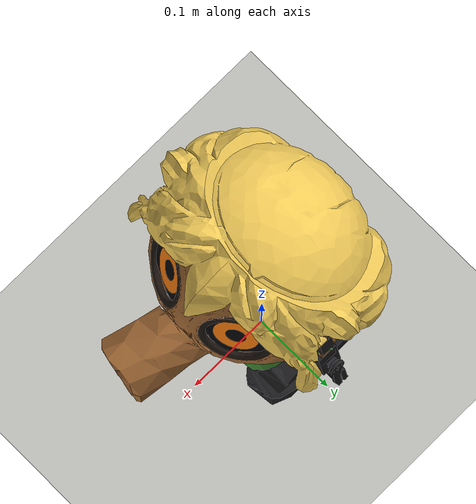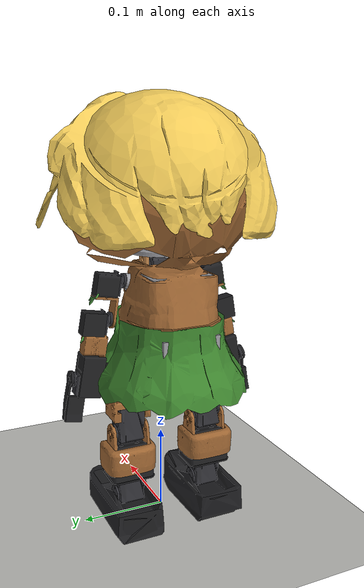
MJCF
<mujoco model="twiglet_v3">
  <compiler angle="radian" autolimits="true" />
  <option timestep="0.002" integrator="implicitfast" />
  <default>
    <joint armature="0.02" damping="0.05" frictionloss="0.05" />
    <geom contype="2" conaffinity="1" friction="0.8 0.02 0.001" solref="0.004 1" />
    <default class="vis">
      <geom contype="0" conaffinity="0" group="1" density="0" />
    </default>
  </default>
  <visual>
    <global offwidth="1280" offheight="960" />
    <headlight ambient="0.45 0.45 0.45" diffuse="0.6 0.6 0.6" />
  </visual>
  <asset>
    <material name="wood" rgba="0.62 0.4 0.2 1" specular="0.2" />
    <material name="wood_l" rgba="0.72 0.5 0.28 1" specular="0.2" />
    <material name="dark" rgba="0.1 0.07 0.05 1" specular="0.2" />
    <material name="orange" rgba="1 0.5 0.05 1" specular="0.2" />
    <material name="yellow" rgba="0.95 0.8 0.35 1" specular="0.2" />
    <material name="green" rgba="0.25 0.62 0.22 1" specular="0.2" />
    <material name="felt" rgba="0.22 0.45 0.18 1" specular="0.2" />
    <material name="black" rgba="0.12 0.12 0.13 1" specular="0.2" />
    <material name="servo" rgba="0.2 0.2 0.22 1" specular="0.2" />
    <material name="grey" rgba="0.6 0.6 0.62 1" specular="0.2" />
    <material name="metal" rgba="0.55 0.55 0.58 1" specular="0.2" />
    <material name="pcb" rgba="0.1 0.35 0.15 1" specular="0.2" />
    <material name="leaf" rgba="0.3 0.6 0.25 1" specular="0.2" />
    <material name="glass" rgba="0.02 0.02 0.03 1" specular="0.2" />
    <material name="s32" rgba="0.16 0.16 0.18 1" specular="0.2" />
    <material name="eyeorange" rgba="1 0.5 0.05 1" specular="0.2" />
    <material name="kilt" rgba="0.24 0.52 0.18 1" specular="0.2" />
    <texture name="grid" type="2d" builtin="checker" rgb1="0.82 0.82 0.80" rgb2="0.72 0.72 0.70" width="512" height="512" />
    <material name="grid" texture="grid" texrepeat="8 8" />
    <texture name="sky" type="skybox" builtin="gradient" rgb1="0.95 0.95 0.94" rgb2="0.8 0.84 0.88" width="256" height="256" />
    <mesh name="v3_trunk_assembly_metal" file="meshes/v3_trunk_assembly_metal.stl" scale="0.001 0.001 0.001" />
    <mesh name="v3_trunk_assembly_servo" file="meshes/v3_trunk_assembly_servo.stl" scale="0.001 0.001 0.001" />
    <mesh name="v3_trunk_assembly_pcb" file="meshes/v3_trunk_assembly_pcb.stl" scale="0.001 0.001 0.001" />
    <mesh name="v3_trunk_assembly_kilt" file="meshes/v3_trunk_assembly_kilt.stl" scale="0.001 0.001 0.001" />
    <mesh name="v3_trunk_assembly_grey" file="meshes/v3_trunk_assembly_grey.stl" scale="0.001 0.001 0.001" />
    <mesh name="v3_trunk_assembly_wood" file="meshes/v3_trunk_assembly_wood.stl" scale="0.001 0.001 0.001" />
    <mesh name="v3_trunk_assembly_s32" file="meshes/v3_trunk_assembly_s32.stl" scale="0.001 0.001 0.001" />
    <mesh name="v3_trunk_assembly_leaf" file="meshes/v3_trunk_assembly_leaf.stl" scale="0.001 0.001 0.001" />
    <mesh name="v3_hip_roll_assembly_black" file="meshes/v3_hip_roll_assembly_black.stl" scale="0.001 0.001 0.001" />
    <mesh name="v3_hip_roll_assembly_servo" file="meshes/v3_hip_roll_assembly_servo.stl" scale="0.001 0.001 0.001" />
    <mesh name="v3_left_roll_to_pitch_assembly_servo" file="meshes/v3_left_roll_to_pitch_assembly_servo.stl" scale="0.001 0.001 0.001" />
    <mesh name="v3_left_roll_to_pitch_assembly_black" file="meshes/v3_left_roll_to_pitch_assembly_black.stl" scale="0.001 0.001 0.001" />
    <mesh name="v3_knee_and_ankle_assembly_wood" file="meshes/v3_knee_and_ankle_assembly_wood.stl" scale="0.001 0.001 0.001" />
    <mesh name="v3_knee_and_ankle_assembly_servo" file="meshes/v3_knee_and_ankle_assembly_servo.stl" scale="0.001 0.001 0.001" />
    <mesh name="v3_knee_and_ankle_assembly_2_black" file="meshes/v3_knee_and_ankle_assembly_2_black.stl" scale="0.001 0.001 0.001" />
    <mesh name="v3_knee_and_ankle_assembly_2_wood" file="meshes/v3_knee_and_ankle_assembly_2_wood.stl" scale="0.001 0.001 0.001" />
    <mesh name="v3_knee_and_ankle_assembly_2_servo" file="meshes/v3_knee_and_ankle_assembly_2_servo.stl" scale="0.001 0.001 0.001" />
    <mesh name="v3_foot_assembly_black" file="meshes/v3_foot_assembly_black.stl" scale="0.001 0.001 0.001" />
    <mesh name="v3_hip_roll_assembly_2_black" file="meshes/v3_hip_roll_assembly_2_black.stl" scale="0.001 0.001 0.001" />
    <mesh name="v3_hip_roll_assembly_2_servo" file="meshes/v3_hip_roll_assembly_2_servo.stl" scale="0.001 0.001 0.001" />
    <mesh name="v3_right_roll_to_pitch_assembly_servo" file="meshes/v3_right_roll_to_pitch_assembly_servo.stl" scale="0.001 0.001 0.001" />
    <mesh name="v3_right_roll_to_pitch_assembly_black" file="meshes/v3_right_roll_to_pitch_assembly_black.stl" scale="0.001 0.001 0.001" />
    <mesh name="v3_knee_and_ankle_assembly_3_wood" file="meshes/v3_knee_and_ankle_assembly_3_wood.stl" scale="0.001 0.001 0.001" />
    <mesh name="v3_knee_and_ankle_assembly_3_servo" file="meshes/v3_knee_and_ankle_assembly_3_servo.stl" scale="0.001 0.001 0.001" />
    <mesh name="v3_knee_and_ankle_assembly_4_black" file="meshes/v3_knee_and_ankle_assembly_4_black.stl" scale="0.001 0.001 0.001" />
    <mesh name="v3_knee_and_ankle_assembly_4_wood" file="meshes/v3_knee_and_ankle_assembly_4_wood.stl" scale="0.001 0.001 0.001" />
    <mesh name="v3_knee_and_ankle_assembly_4_servo" file="meshes/v3_knee_and_ankle_assembly_4_servo.stl" scale="0.001 0.001 0.001" />
    <mesh name="v3_foot_assembly_2_black" file="meshes/v3_foot_assembly_2_black.stl" scale="0.001 0.001 0.001" />
    <mesh name="v3_head_pitch_to_yaw_wood_l" file="meshes/v3_head_pitch_to_yaw_wood_l.stl" scale="0.001 0.001 0.001" />
    <mesh name="v3_neck_yaw_assembly_grey" file="meshes/v3_neck_yaw_assembly_grey.stl" scale="0.001 0.001 0.001" />
    <mesh name="v3_neck_yaw_assembly_servo" file="meshes/v3_neck_yaw_assembly_servo.stl" scale="0.001 0.001 0.001" />
    <mesh name="v3_head_assembly_wood_l" file="meshes/v3_head_assembly_wood_l.stl" scale="0.001 0.001 0.001" />
    <mesh name="v3_head_assembly_grey" file="meshes/v3_head_assembly_grey.stl" scale="0.001 0.001 0.001" />
    <mesh name="v3_head_assembly_servo" file="meshes/v3_head_assembly_servo.stl" scale="0.001 0.001 0.001" />
    <mesh name="v3_head_assembly_wood" file="meshes/v3_head_assembly_wood.stl" scale="0.001 0.001 0.001" />
    <mesh name="v3_head_assembly_dark" file="meshes/v3_head_assembly_dark.stl" scale="0.001 0.001 0.001" />
    <mesh name="v3_head_assembly_yellow" file="meshes/v3_head_assembly_yellow.stl" scale="0.001 0.001 0.001" />
    <mesh name="v3_head_assembly_glass" file="meshes/v3_head_assembly_glass.stl" scale="0.001 0.001 0.001" />
    <mesh name="v3_head_assembly_eyeorange" file="meshes/v3_head_assembly_eyeorange.stl" scale="0.001 0.001 0.001" />
    <mesh name="v3_head_assembly_pcb" file="meshes/v3_head_assembly_pcb.stl" scale="0.001 0.001 0.001" />
    <mesh name="v3_upper_arm_L_s32" file="meshes/v3_upper_arm_L_s32.stl" scale="0.001 0.001 0.001" />
    <mesh name="v3_upper_arm_L_wood" file="meshes/v3_upper_arm_L_wood.stl" scale="0.001 0.001 0.001" />
    <mesh name="v3_upper_arm_L_black" file="meshes/v3_upper_arm_L_black.stl" scale="0.001 0.001 0.001" />
    <mesh name="v3_upper_arm_L_leaf" file="meshes/v3_upper_arm_L_leaf.stl" scale="0.001 0.001 0.001" />
    <mesh name="v3_fore_arm_L_black" file="meshes/v3_fore_arm_L_black.stl" scale="0.001 0.001 0.001" />
    <mesh name="v3_fore_arm_L_s32" file="meshes/v3_fore_arm_L_s32.stl" scale="0.001 0.001 0.001" />
    <mesh name="v3_fore_arm_L_wood" file="meshes/v3_fore_arm_L_wood.stl" scale="0.001 0.001 0.001" />
    <mesh name="v3_fore_arm_L_leaf" file="meshes/v3_fore_arm_L_leaf.stl" scale="0.001 0.001 0.001" />
    <mesh name="v3_finger_L_s32" file="meshes/v3_finger_L_s32.stl" scale="0.001 0.001 0.001" />
    <mesh name="v3_finger_L_black" file="meshes/v3_finger_L_black.stl" scale="0.001 0.001 0.001" />
    <mesh name="v3_upper_arm_R_s32" file="meshes/v3_upper_arm_R_s32.stl" scale="0.001 0.001 0.001" />
    <mesh name="v3_upper_arm_R_wood" file="meshes/v3_upper_arm_R_wood.stl" scale="0.001 0.001 0.001" />
    <mesh name="v3_upper_arm_R_black" file="meshes/v3_upper_arm_R_black.stl" scale="0.001 0.001 0.001" />
    <mesh name="v3_upper_arm_R_leaf" file="meshes/v3_upper_arm_R_leaf.stl" scale="0.001 0.001 0.001" />
    <mesh name="v3_fore_arm_R_black" file="meshes/v3_fore_arm_R_black.stl" scale="0.001 0.001 0.001" />
    <mesh name="v3_fore_arm_R_s32" file="meshes/v3_fore_arm_R_s32.stl" scale="0.001 0.001 0.001" />
    <mesh name="v3_fore_arm_R_wood" file="meshes/v3_fore_arm_R_wood.stl" scale="0.001 0.001 0.001" />
    <mesh name="v3_fore_arm_R_leaf" file="meshes/v3_fore_arm_R_leaf.stl" scale="0.001 0.001 0.001" />
    <mesh name="v3_finger_R_s32" file="meshes/v3_finger_R_s32.stl" scale="0.001 0.001 0.001" />
    <mesh name="v3_finger_R_black" file="meshes/v3_finger_R_black.stl" scale="0.001 0.001 0.001" />
  </asset>
  <worldbody>
    <geom name="floor" type="plane" size="5 5 0.1" material="grid" contype="1" conaffinity="1" />
    <light pos="1 -1 2.5" dir="-0.4 0.4 -1" diffuse="0.5 0.5 0.5" />
    <body name="trunk_assembly" pos="0 0 0.218199">
      <freejoint name="root" />
      <site name="imu" pos="0 0 0.06" />
      <inertial pos="-0.0335937 0.000177711 0.0283815" mass="0.67118" fullinertia="0.00152038 0.00187683 0.00139938 -2.47995e-06 -0.000307056 -1.73265e-06" />
      <geom type="mesh" mesh="v3_trunk_assembly_metal" material="metal" class="vis" />
      <geom type="mesh" mesh="v3_trunk_assembly_servo" material="servo" class="vis" />
      <geom type="mesh" mesh="v3_trunk_assembly_pcb" material="pcb" class="vis" />
      <geom type="mesh" mesh="v3_trunk_assembly_kilt" material="kilt" class="vis" />
      <geom type="mesh" mesh="v3_trunk_assembly_grey" material="grey" class="vis" />
      <geom type="mesh" mesh="v3_trunk_assembly_wood" material="wood" class="vis" />
      <geom type="mesh" mesh="v3_trunk_assembly_s32" material="s32" class="vis" />
      <geom type="mesh" mesh="v3_trunk_assembly_leaf" material="leaf" class="vis" />
      <geom type="box" size="0.0825664 0.0799127 0.0683098" pos="-0.0208212 3.8147e-09 0.0242112" rgba="0 0 0 0" group="3" />
      <body name="hip_roll_assembly" pos="-0.021 0.022 0.0459409">
        <joint name="left_hip_yaw" axis="-2.19824e-14 2.0757e-16 1" range="-0.523599 0.523599" />
        <inertial pos="0.000458142 -1.3345e-06 -0.0328002" mass="0.06849" fullinertia="2.50819e-05 2.95448e-05 1.52599e-05 2.79965e-09 -5.51733e-07 -8.51645e-09" />
        <geom type="mesh" mesh="v3_hip_roll_assembly_black" material="black" class="vis" />
        <geom type="mesh" mesh="v3_hip_roll_assembly_servo" material="servo" class="vis" />
        <body name="left_roll_to_pitch_assembly" pos="0.01905 -1.27187e-15 -0.046015">
          <joint name="left_hip_roll" axis="-1 2.9427e-13 -6.96608e-14" range="-0.436332 0.436332" />
          <inertial pos="-0.00121777 0.024393 -0.0407887" mass="0.08175" fullinertia="2.96836e-05 3.47429e-05 3.73959e-05 -2.35521e-06 3.87388e-06 3.87862e-06" />
          <geom type="mesh" mesh="v3_left_roll_to_pitch_assembly_servo" material="servo" class="vis" />
          <geom type="mesh" mesh="v3_left_roll_to_pitch_assembly_black" material="black" class="vis" />
          <body name="knee_and_ankle_assembly" pos="-0.01511 0.028 -0.044">
            <joint name="left_hip_pitch" axis="-2.92877e-13 -1 1.02846e-13" range="-1.22173 0.523599" />
            <inertial pos="1.36463e-06 0.000180694 -0.0393972" mass="0.07270" fullinertia="3.1762e-05 2.45943e-05 1.7267e-05 -2.76105e-09 8.87463e-09 -4.76679e-07" />
            <geom type="mesh" mesh="v3_knee_and_ankle_assembly_wood" material="wood" class="vis" />
            <geom type="mesh" mesh="v3_knee_and_ankle_assembly_servo" material="servo" class="vis" />
            <body name="knee_and_ankle_assembly_2" pos="5.45697e-15 0 -0.05665">
              <joint name="left_knee" axis="-2.92877e-13 -1 1.0311e-13" range="-1.5708 1.5708" />
              <inertial pos="-3.91895e-05 0.000254627 -0.0523272" mass="0.101903" fullinertia="6.847e-05 5.74242e-05 3.58657e-05 -4.34117e-09 4.23411e-07 -6.37908e-07" />
              <geom type="mesh" mesh="v3_knee_and_ankle_assembly_2_black" material="black" class="vis" />
              <geom type="mesh" mesh="v3_knee_and_ankle_assembly_2_wood" material="wood" class="vis" />
              <geom type="mesh" mesh="v3_knee_and_ankle_assembly_2_servo" material="servo" class="vis" />
              <body name="foot_assembly" pos="5.41434e-15 0 -0.07865">
                <joint name="left_ankle" axis="-2.92877e-13 -1 1.03374e-13" range="-1.5708 1.5708" />
                <inertial pos="0.0140653 0.00253215 -0.0218921" mass="0.123078" fullinertia="5.30804e-05 0.000150589 0.000180734 -3.9861e-06 1.47982e-06 -1.35856e-06" />
                <geom type="mesh" mesh="v3_foot_assembly_black" material="black" class="vis" />
                <geom name="sole_foot_assembly" type="box" size="0.0509663 0.0203669 0.003" pos="0.0133722 -0.000644639 -0.035825" rgba="0 0 0 0" group="3" />
              </body>
            </body>
          </body>
        </body>
      </body>
      <body name="hip_roll_assembly_2" pos="-0.021 -0.022 0.0459409">
        <joint name="right_hip_yaw" axis="-2.20379e-14 4.6225e-16 1" range="-0.523599 0.523599" />
        <inertial pos="0.000458142 -1.3345e-06 -0.0328002" mass="0.06849" fullinertia="2.50819e-05 2.95448e-05 1.52599e-05 2.79965e-09 -5.51733e-07 -8.51645e-09" />
        <geom type="mesh" mesh="v3_hip_roll_assembly_2_black" material="black" class="vis" />
        <geom type="mesh" mesh="v3_hip_roll_assembly_2_servo" material="servo" class="vis" />
        <body name="right_roll_to_pitch_assembly" pos="0.01905 1.51346e-15 -0.046015">
          <joint name="right_hip_roll" axis="-1 2.99322e-13 8.66031e-14" range="-0.436332 0.436332" />
          <inertial pos="-0.00121777 -0.024393 -0.0407863" mass="0.08175" fullinertia="2.96824e-05 3.47417e-05 3.73959e-05 2.35521e-06 3.89101e-06 -3.87238e-06" />
          <geom type="mesh" mesh="v3_right_roll_to_pitch_assembly_servo" material="servo" class="vis" />
          <geom type="mesh" mesh="v3_right_roll_to_pitch_assembly_black" material="black" class="vis" />
          <body name="knee_and_ankle_assembly_3" pos="-0.01511 -0.028 -0.044">
            <joint name="right_hip_pitch" axis="2.99039e-13 1 8.40288e-14" range="-0.523599 1.22173" />
            <inertial pos="1.36463e-06 -1.93055e-05 -0.0393972" mass="0.07270" fullinertia="3.1762e-05 2.45943e-05 1.7267e-05 -2.76104e-09 8.87464e-09 -4.76681e-07" />
            <geom type="mesh" mesh="v3_knee_and_ankle_assembly_3_wood" material="wood" class="vis" />
            <geom type="mesh" mesh="v3_knee_and_ankle_assembly_3_servo" material="servo" class="vis" />
            <body name="knee_and_ankle_assembly_4" pos="4.24194e-15 0 -0.05665">
              <joint name="right_knee" axis="-2.99039e-13 -1 -8.39064e-14" range="-1.5708 1.5708" />
              <inertial pos="-3.98128e-05 -0.000289904 -0.0523469" mass="0.101774" fullinertia="6.83243e-05 5.73471e-05 3.57486e-05 -1.02317e-08 4.20297e-07 1.19171e-07" />
              <geom type="mesh" mesh="v3_knee_and_ankle_assembly_4_black" material="black" class="vis" />
              <geom type="mesh" mesh="v3_knee_and_ankle_assembly_4_wood" material="wood" class="vis" />
              <geom type="mesh" mesh="v3_knee_and_ankle_assembly_4_servo" material="servo" class="vis" />
              <body name="foot_assembly_2" pos="-6.84963e-15 0 -0.07865">
                <joint name="right_ankle" axis="-2.99039e-13 -1 -8.36422e-14" range="-1.5708 1.5708" />
                <inertial pos="0.0140718 -0.00313168 -0.0218923" mass="0.123106" fullinertia="5.28295e-05 0.000150648 0.00018054 3.85204e-06 1.48074e-06 1.15192e-06" />
                <geom type="mesh" mesh="v3_foot_assembly_2_black" material="black" class="vis" />
                <geom name="sole_foot_assembly_2" type="box" size="0.0509663 0.0203669 0.003" pos="0.0133722 -0.000844639 -0.035825" rgba="0 0 0 0" group="3" />
              </body>
            </body>
          </body>
        </body>
      </body>
      <body name="head_pitch_to_yaw" pos="0.0019 0.01915 0.0900009">
        <joint name="head_pitch" axis="-5.29989e-17 -1 2.05301e-16" range="-0.785398 0.785398" />
        <inertial pos="-0.00766227 -0.0186681 0.0260173" mass="0.01151" fullinertia="6.40913e-06 5.45686e-06 3.15872e-06 -2.07986e-08 9.19047e-07 5.72828e-08" />
        <geom type="mesh" mesh="v3_head_pitch_to_yaw_wood_l" material="wood_l" class="vis" />
        <body name="neck_yaw_assembly" pos="-1.28364e-15 -0.01905 0.057">
          <joint name="head_yaw" axis="-2.22674e-14 1.44068e-16 1" range="-2.79253 2.79253" />
          <inertial pos="0.00628165 1.29442e-06 -0.021034" mass="0.07151" fullinertia="2.22264e-05 4.70668e-05 4.52476e-05 7.85692e-09 -3.46328e-06 -3.00499e-09" />
          <geom type="mesh" mesh="v3_neck_yaw_assembly_grey" material="grey" class="vis" />
          <geom type="mesh" mesh="v3_neck_yaw_assembly_servo" material="servo" class="vis" />
          <body name="head_assembly" pos="0.03795 2.83056e-15 -0.01915">
            <joint name="head_roll" axis="-1 -2.41896e-16 -2.19842e-14" range="-0.523599 0.523599" />
            <inertial pos="-0.0172104 -0.00182123 0.0607753" mass="0.81440" fullinertia="0.00391381 0.00510328 0.00592768 9.97106e-06 1.09239e-05 1.62623e-05" />
            <geom type="mesh" mesh="v3_head_assembly_wood_l" material="wood_l" class="vis" />
            <geom type="mesh" mesh="v3_head_assembly_grey" material="grey" class="vis" />
            <geom type="mesh" mesh="v3_head_assembly_servo" material="servo" class="vis" />
            <geom type="mesh" mesh="v3_head_assembly_wood" material="wood" class="vis" />
            <geom type="mesh" mesh="v3_head_assembly_dark" material="dark" class="vis" />
            <geom type="mesh" mesh="v3_head_assembly_yellow" material="yellow" class="vis" />
            <geom type="mesh" mesh="v3_head_assembly_glass" material="glass" class="vis" />
            <geom type="mesh" mesh="v3_head_assembly_eyeorange" material="eyeorange" class="vis" />
            <geom type="mesh" mesh="v3_head_assembly_pcb" material="pcb" class="vis" />
            <geom type="box" size="0.133548 0.113075 0.0821217" pos="0.00437923 0.000595984 0.0629248" rgba="0 0 0 0" group="3" />
          </body>
        </body>
      </body>
      <body name="upper_arm_L" pos="0.004 0.045 0.074">
        <joint name="shoulder_L" axis="0 -0.984808 -0.173648" range="-1.0472 2.61799" armature="0.004" />
        <inertial pos="0.000110899 0.0215847 -0.00597407" mass="0.0368638" fullinertia="7.09005e-06 5.15778e-06 3.01263e-06 -6.03306e-08 -4.74984e-08 -1.95848e-07" />
        <geom type="mesh" mesh="v3_upper_arm_L_s32" material="s32" class="vis" />
        <geom type="mesh" mesh="v3_upper_arm_L_wood" material="wood" class="vis" />
        <geom type="mesh" mesh="v3_upper_arm_L_black" material="black" class="vis" />
        <geom type="mesh" mesh="v3_upper_arm_L_leaf" material="leaf" class="vis" />
        <body name="fore_arm_L" pos="0 0.00798782 -0.0453012">
          <joint name="elbow_L" axis="0 -0.984808 -0.173648" range="-0.349066 2.26893" armature="0.004" />
          <inertial pos="-0.000304208 0.0373358 -0.0413441" mass="0.0891711" fullinertia="0.000111302 0.000103491 1.12449e-05 4.52131e-07 -1.33847e-06 1.80055e-05" />
          <geom type="mesh" mesh="v3_fore_arm_L_black" material="black" class="vis" />
          <geom type="mesh" mesh="v3_fore_arm_L_s32" material="s32" class="vis" />
          <geom type="mesh" mesh="v3_fore_arm_L_wood" material="wood" class="vis" />
          <geom type="mesh" mesh="v3_fore_arm_L_leaf" material="leaf" class="vis" />
          <body name="finger_L" pos="0 0.0125027 -0.0709062">
            <joint name="gripper_L" axis="0 -0.984808 -0.173648" range="-0.174533 1.0472" armature="0.004" />
            <inertial pos="0.0020277 0.0499475 -0.0347018" mass="0.00477759" fullinertia="3.25715e-05 3.06997e-05 1.98353e-06 -5.11281e-08 2.83481e-07 7.3342e-06" />
            <geom type="mesh" mesh="v3_finger_L_s32" material="s32" class="vis" />
            <geom type="mesh" mesh="v3_finger_L_black" material="black" class="vis" />
          </body>
        </body>
      </body>
      <body name="upper_arm_R" pos="0.004 -0.045 0.074">
        <joint name="shoulder_R" axis="-0 -0.984808 0.173648" range="-1.0472 2.61799" armature="0.004" />
        <inertial pos="0.00011132 -0.0215856 -0.00597284" mass="0.0368653" fullinertia="7.07967e-06 5.15483e-06 3.00581e-06 6.04913e-08 -4.74698e-08 1.8997e-07" />
        <geom type="mesh" mesh="v3_upper_arm_R_s32" material="s32" class="vis" />
        <geom type="mesh" mesh="v3_upper_arm_R_wood" material="wood" class="vis" />
        <geom type="mesh" mesh="v3_upper_arm_R_black" material="black" class="vis" />
        <geom type="mesh" mesh="v3_upper_arm_R_leaf" material="leaf" class="vis" />
        <body name="fore_arm_R" pos="0 -0.00798782 -0.0453012">
          <joint name="elbow_R" axis="-0 -0.984808 0.173648" range="-0.349066 2.26893" armature="0.004" />
          <inertial pos="-0.000299917 -0.0373353 -0.0413325" mass="0.0891936" fullinertia="0.000111345 0.000103541 1.12487e-05 -4.51024e-07 -1.35537e-06 -1.80079e-05" />
          <geom type="mesh" mesh="v3_fore_arm_R_black" material="black" class="vis" />
          <geom type="mesh" mesh="v3_fore_arm_R_s32" material="s32" class="vis" />
          <geom type="mesh" mesh="v3_fore_arm_R_wood" material="wood" class="vis" />
          <geom type="mesh" mesh="v3_fore_arm_R_leaf" material="leaf" class="vis" />
          <body name="finger_R" pos="0 -0.0125027 -0.0709062">
            <joint name="gripper_R" axis="-0 -0.984808 0.173648" range="-0.174533 1.0472" armature="0.004" />
            <inertial pos="0.0020277 -0.0499475 -0.0347018" mass="0.00477759" fullinertia="3.25715e-05 3.06997e-05 1.98354e-06 5.11281e-08 2.83481e-07 -7.33421e-06" />
            <geom type="mesh" mesh="v3_finger_R_s32" material="s32" class="vis" />
            <geom type="mesh" mesh="v3_finger_R_black" material="black" class="vis" />
          </body>
        </body>
      </body>
    </body>
  </worldbody>
  <actuator>
    <motor name="left_hip_yaw" joint="left_hip_yaw" ctrlrange="-1.91 1.91" />
    <motor name="left_hip_roll" joint="left_hip_roll" ctrlrange="-1.91 1.91" />
    <motor name="left_hip_pitch" joint="left_hip_pitch" ctrlrange="-1.91 1.91" />
    <motor name="left_knee" joint="left_knee" ctrlrange="-1.91 1.91" />
    <motor name="left_ankle" joint="left_ankle" ctrlrange="-1.91 1.91" />
    <motor name="right_hip_yaw" joint="right_hip_yaw" ctrlrange="-1.91 1.91" />
    <motor name="right_hip_roll" joint="right_hip_roll" ctrlrange="-1.91 1.91" />
    <motor name="right_hip_pitch" joint="right_hip_pitch" ctrlrange="-1.91 1.91" />
    <motor name="right_knee" joint="right_knee" ctrlrange="-1.91 1.91" />
    <motor name="right_ankle" joint="right_ankle" ctrlrange="-1.91 1.91" />
    <motor name="head_pitch" joint="head_pitch" ctrlrange="-1.91 1.91" />
    <motor name="head_yaw" joint="head_yaw" ctrlrange="-1.91 1.91" />
    <motor name="head_roll" joint="head_roll" ctrlrange="-1.91 1.91" />
    <motor name="shoulder_L" joint="shoulder_L" ctrlrange="-0.441 0.441" />
    <motor name="elbow_L" joint="elbow_L" ctrlrange="-0.441 0.441" />
    <motor name="gripper_L" joint="gripper_L" ctrlrange="-0.441 0.441" />
    <motor name="shoulder_R" joint="shoulder_R" ctrlrange="-0.441 0.441" />
    <motor name="elbow_R" joint="elbow_R" ctrlrange="-0.441 0.441" />
    <motor name="gripper_R" joint="gripper_R" ctrlrange="-0.441 0.441" />
  </actuator>
  <sensor>
    <framequat name="imu_quat" objtype="site" objname="imu" />
    <gyro name="imu_gyro" site="imu" />
  </sensor>
</mujoco>
